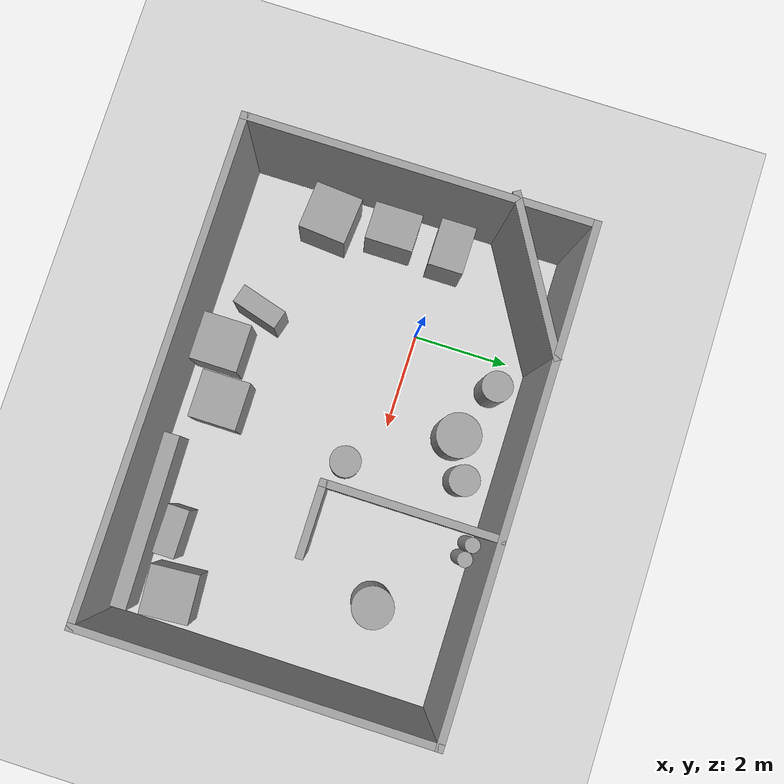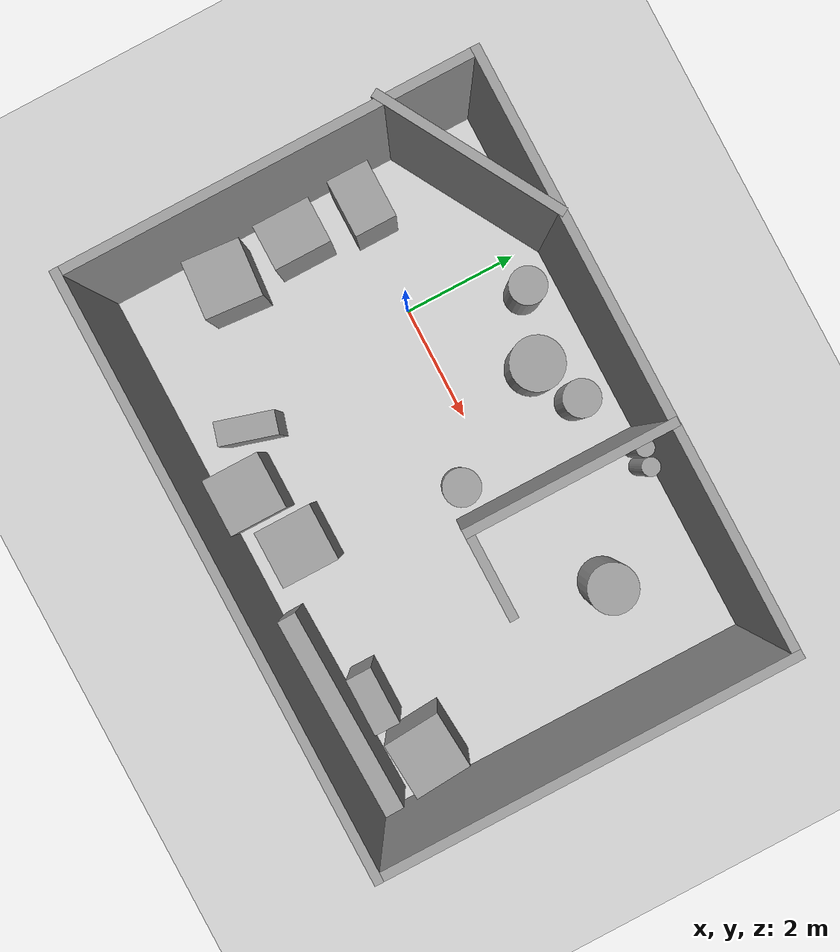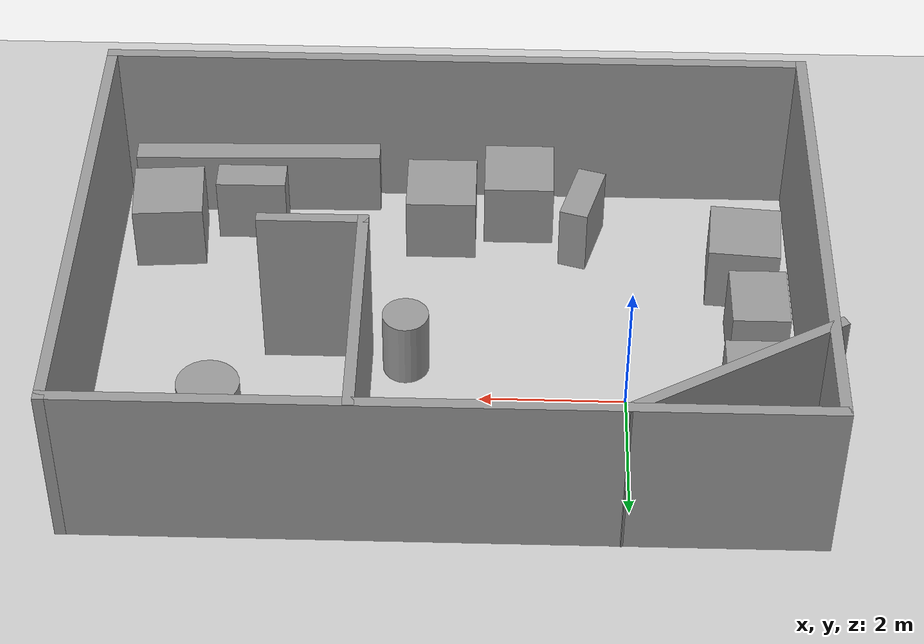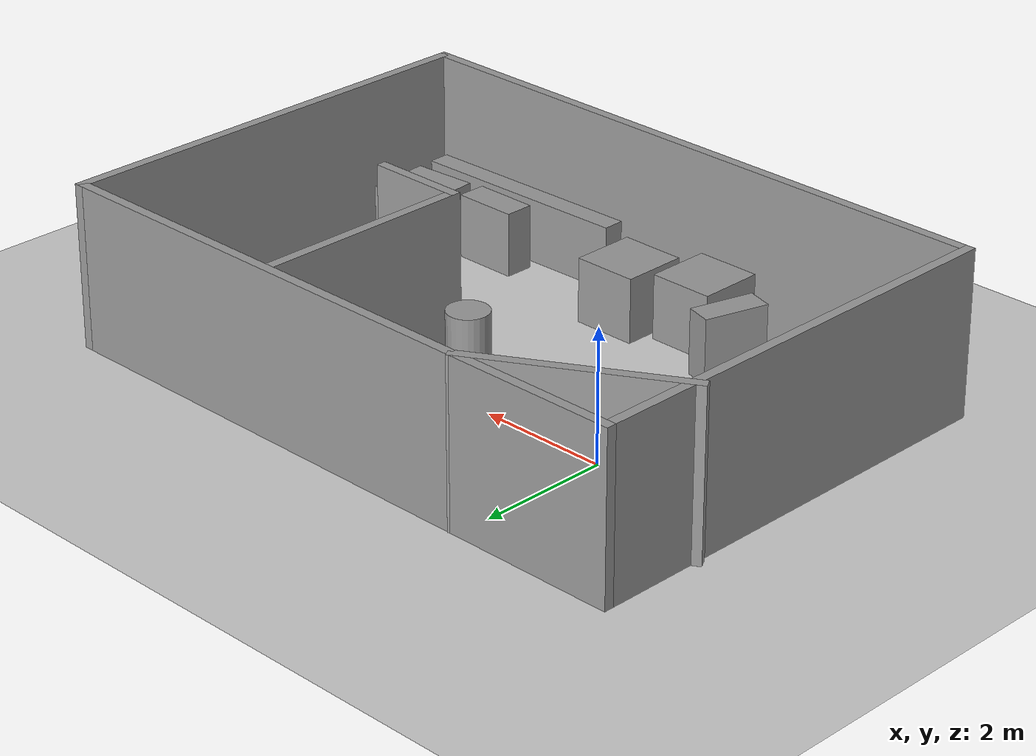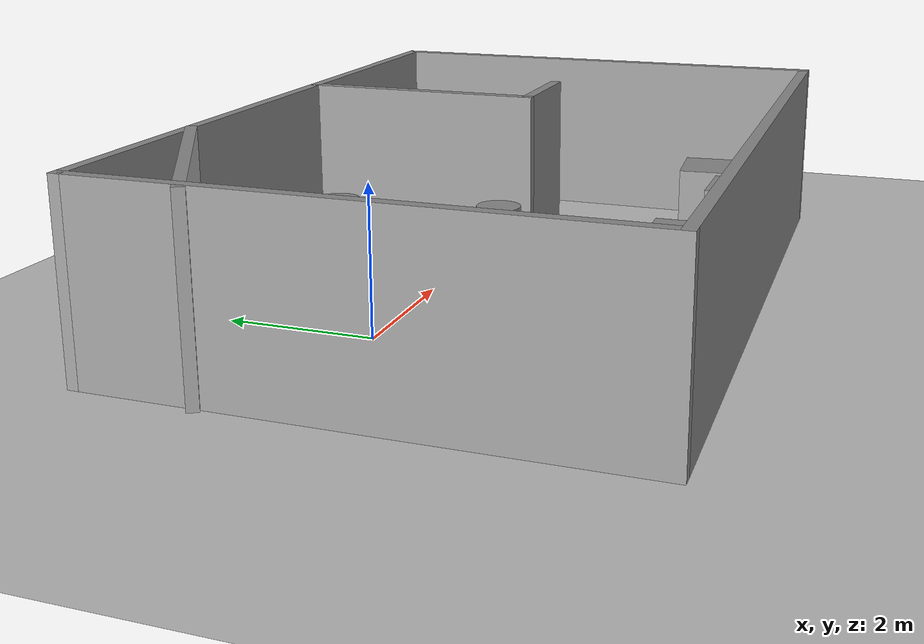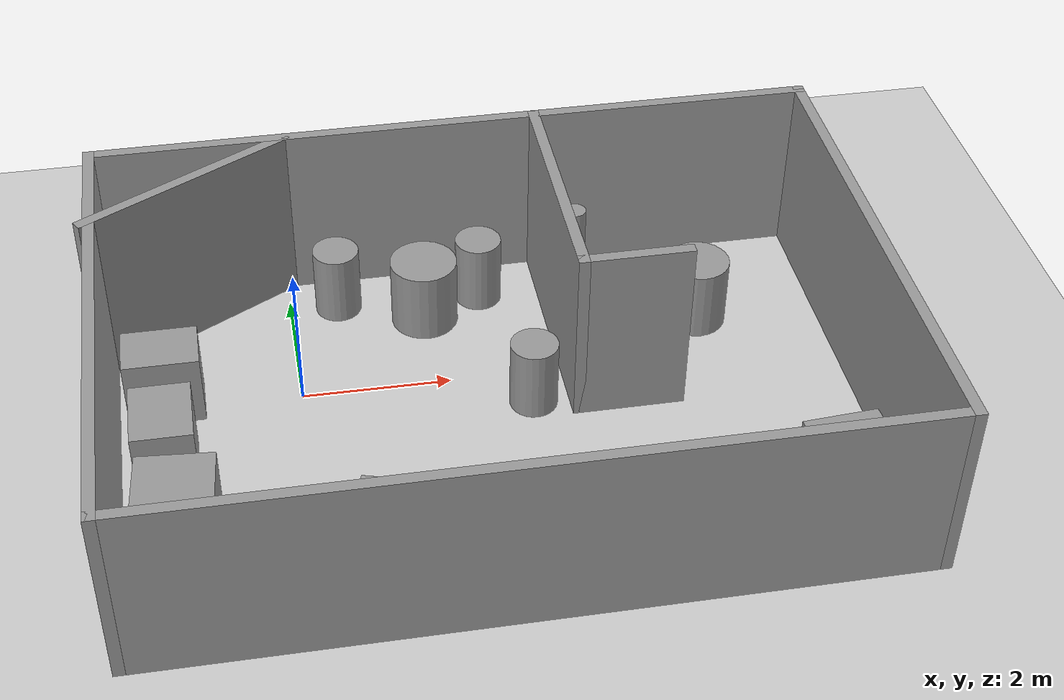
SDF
<sdf version="1.7">
 <world name="default">
  <light name="sun" type="directional">
   <pose>0 0 10 0 -0 0</pose>
   <diffuse>0.8 0.8 0.8 1</diffuse>
   <specular>0.2 0.2 0.2 1</specular>
   <attenuation>
    <range>1000</range>
    <constant>0.9</constant>
    <linear>0.01</linear>
    <quadratic>0.001</quadratic>
   </attenuation>
   <direction>-0.5 0.1 -0.9</direction>
   <spot><inner_angle>0</inner_angle><outer_angle>0</outer_angle><falloff>0</falloff></spot>
  </light>
  <model name="ground_plane">
   <static>1</static>
   <link name="link">
    <collision name="collision">
     <geometry><plane><normal>0 0 1</normal><size>100 100</size></plane></geometry>
     <surface>
      <contact><collide_bitmask>65535</collide_bitmask></contact>
      <friction><ode><mu>100</mu><mu2>50</mu2></ode></friction>
     </surface>
    </collision>
    <visual name="visual">
     <cast_shadows>0</cast_shadows>
     <geometry><plane><normal>0 0 1</normal><size>100 100</size></plane></geometry>
     <material>
      <script><uri>file://media/materials/scripts/gazebo.material</uri><name>Gazebo/Grey</name></script>
     </material>
    </visual>
   </link>
  </model>
  <gravity>0 0 -9.8</gravity>
  <magnetic_field>6e-06 2.3e-05 -4.2e-05</magnetic_field>
  <atmosphere type="adiabatic"/>
  <physics type="ode">
   <max_step_size>0.001</max_step_size>
   <real_time_factor>1</real_time_factor>
   <real_time_update_rate>1000</real_time_update_rate>
  </physics>
  <scene><ambient>0.4 0.4 0.4 1</ambient><background>0.7 0.7 0.7 1</background><shadows>1</shadows></scene>
  <spherical_coordinates>
   <surface_model>EARTH_WGS84</surface_model>
   <latitude_deg>0</latitude_deg>
   <longitude_deg>0</longitude_deg>
   <elevation>0</elevation>
   <heading_deg>0</heading_deg>
  </spherical_coordinates>
  <model name="Untitled">
   <pose>2.37536 -0.916647 0 0 -0 0</pose>
   <link name="Wall_0">
    <collision name="Wall_0_Collision">
     <geometry><box><size>10 0.15 2.5</size></box></geometry>
     <pose>0 0 1.25 0 -0 0</pose>
    </collision>
    <visual name="Wall_0_Visual">
     <pose>0 0 1.25 0 -0 0</pose>
     <geometry><box><size>10 0.15 2.5</size></box></geometry>
     <material>
      <script><uri>file://media/materials/scripts/gazebo.material</uri><name>Gazebo/Grey</name></script>
      <ambient>1 1 1 1</ambient>
     </material>
     <meta><layer>0</layer></meta>
    </visual>
    <pose>0.059639 -3.43335 0 0 -0 0</pose>
   </link>
   <link name="Wall_11">
    <collision name="Wall_11_Collision">
     <geometry><box><size>3.25 0.15 2.5</size></box></geometry>
     <pose>0 0 1.25 0 -0 0</pose>
    </collision>
    <visual name="Wall_11_Visual">
     <pose>0 0 1.25 0 -0 0</pose>
     <geometry><box><size>3.25 0.15 2.5</size></box></geometry>
     <material>
      <script><uri>file://media/materials/scripts/gazebo.material</uri><name>Gazebo/Grey</name></script>
      <ambient>1 1 1 1</ambient>
     </material>
     <meta><layer>0</layer></meta>
    </visual>
    <pose>-3.61485 2.6309 0 0 -0 -2.61799</pose>
   </link>
   <link name="Wall_13">
    <collision name="Wall_13_Collision">
     <geometry><box><size>3.5 0.15 2.5</size></box></geometry>
     <pose>0 0 1.25 0 -0 0</pose>
    </collision>
    <visual name="Wall_13_Visual">
     <pose>0 0 1.25 0 -0 0</pose>
     <geometry><box><size>3.5 0.15 2.5</size></box></geometry>
     <material>
      <script><uri>file://media/materials/scripts/gazebo.material</uri><name>Gazebo/Grey</name></script>
      <ambient>1 1 1 1</ambient>
     </material>
     <meta><layer>0</layer></meta>
    </visual>
    <pose>1.19509 1.7309 0 0 -0 -1.5708</pose>
   </link>
   <link name="Wall_14">
    <collision name="Wall_14_Collision">
     <geometry><box><size>1.5 0.15 2.5</size></box></geometry>
     <pose>0 0 1.25 0 -0 0</pose>
    </collision>
    <visual name="Wall_14_Visual">
     <pose>0 0 1.25 0 -0 0</pose>
     <geometry><box><size>1.5 0.15 2.5</size></box></geometry>
     <material>
      <script><uri>file://media/materials/scripts/gazebo.material</uri><name>Gazebo/Grey</name></script>
      <ambient>1 1 1 1</ambient>
     </material>
     <meta><layer>0</layer></meta>
    </visual>
    <pose>1.87009 0.055901 0 0 -0 0</pose>
   </link>
   <link name="Wall_4">
    <collision name="Wall_4_Collision">
     <geometry><box><size>7 0.15 2.5</size></box></geometry>
     <pose>0 0 1.25 0 -0 0</pose>
    </collision>
    <visual name="Wall_4_Visual">
     <pose>0 0 1.25 0 -0 0</pose>
     <geometry><box><size>7 0.15 2.5</size></box></geometry>
     <material>
      <script><uri>file://media/materials/scripts/gazebo.material</uri><name>Gazebo/Grey</name></script>
      <ambient>1 1 1 1</ambient>
     </material>
     <meta><layer>0</layer></meta>
    </visual>
    <pose>4.98464 -0.008353 0 0 -0 1.5708</pose>
   </link>
   <link name="Wall_8">
    <collision name="Wall_8_Collision">
     <geometry><box><size>10 0.15 2.5</size></box></geometry>
     <pose>0 0 1.25 0 -0 0</pose>
    </collision>
    <visual name="Wall_8_Visual">
     <pose>0 0 1.25 0 -0 0</pose>
     <geometry><box><size>10 0.15 2.5</size></box></geometry>
     <material>
      <script><uri>file://media/materials/scripts/gazebo.material</uri><name>Gazebo/Grey</name></script>
      <ambient>1 1 1 1</ambient>
     </material>
     <meta><layer>0</layer></meta>
    </visual>
    <pose>0.059639 3.41665 0 0 -0 3.14159</pose>
   </link>
   <link name="Wall_9">
    <collision name="Wall_9_Collision">
     <geometry><box><size>7 0.15 2.5</size></box></geometry>
     <pose>0 0 1.25 0 -0 0</pose>
    </collision>
    <visual name="Wall_9_Visual">
     <pose>0 0 1.25 0 -0 0</pose>
     <geometry><box><size>7 0.15 2.5</size></box></geometry>
     <material>
      <script><uri>file://media/materials/scripts/gazebo.material</uri><name>Gazebo/Grey</name></script>
      <ambient>1 1 1 1</ambient>
     </material>
     <meta><layer>0</layer></meta>
    </visual>
    <pose>-4.86536 -0.008353 0 0 -0 -1.5708</pose>
   </link>
   <static>1</static>
  </model>
  <model name="unit_cylinder">
   <pose>5.57565 0.767644 0.499997 2e-06 1e-06 0</pose>
   <link name="link">
    <inertial>
     <mass>1</mass>
     <inertia><ixx>0.145833</ixx><ixy>0</ixy><ixz>0</ixz><iyy>0.145833</iyy><iyz>0</iyz><izz>0.125</izz></inertia>
    </inertial>
    <collision name="collision">
     <geometry><cylinder><radius>0.426328</radius><length>1</length></cylinder></geometry>
    </collision>
    <visual name="visual">
     <geometry><cylinder><radius>0.426328</radius><length>1</length></cylinder></geometry>
     <material>
      <script><name>Gazebo/Grey</name><uri>file://media/materials/scripts/gazebo.material</uri></script>
     </material>
    </visual>
   </link>
  </model>
  <model name="unit_cylinder_0">
   <pose>0.673574 1.8296 0.499998 0 -0 0</pose>
   <link name="link">
    <inertial>
     <mass>1</mass>
     <inertia><ixx>0.145833</ixx><ixy>0</ixy><ixz>0</ixz><iyy>0.145833</iyy><iyz>0</iyz><izz>0.125</izz></inertia>
    </inertial>
    <collision name="collision">
     <geometry><cylinder><radius>0.319863</radius><length>1</length></cylinder></geometry>
    </collision>
    <visual name="visual">
     <geometry><cylinder><radius>0.319863</radius><length>1</length></cylinder></geometry>
     <material>
      <script><name>Gazebo/Grey</name><uri>file://media/materials/scripts/gazebo.material</uri></script>
     </material>
    </visual>
   </link>
  </model>
  <model name="unit_cylinder_0_clone">
   <pose>1.84074 1.38319 0.499993 0 -0 0</pose>
   <link name="link">
    <inertial>
     <mass>1</mass>
     <inertia><ixx>0.145833</ixx><ixy>0</ixy><ixz>0</ixz><iyy>0.145833</iyy><iyz>0</iyz><izz>0.125</izz></inertia>
    </inertial>
    <collision name="collision">
     <geometry><cylinder><radius>0.461617</radius><length>1</length></cylinder></geometry>
    </collision>
    <visual name="visual">
     <geometry><cylinder><radius>0.461617</radius><length>1</length></cylinder></geometry>
     <material>
      <script><name>Gazebo/Grey</name><uri>file://media/materials/scripts/gazebo.material</uri></script>
     </material>
    </visual>
   </link>
  </model>
  <model name="unit_cylinder_0_clone_0">
   <pose>2.6619 1.74895 0.499993 0 -0 0</pose>
   <link name="link">
    <inertial>
     <mass>1</mass>
     <inertia><ixx>0.145833</ixx><ixy>0</ixy><ixz>0</ixz><iyy>0.145833</iyy><iyz>0</iyz><izz>0.125</izz></inertia>
    </inertial>
    <collision name="collision">
     <geometry><cylinder><radius>0.319863</radius><length>1</length></cylinder></geometry>
    </collision>
    <visual name="visual">
     <geometry><cylinder><radius>0.319863</radius><length>1</length></cylinder></geometry>
     <material>
      <script><name>Gazebo/Grey</name><uri>file://media/materials/scripts/gazebo.material</uri></script>
     </material>
    </visual>
   </link>
  </model>
  <model name="unit_cylinder_0_clone_1">
   <pose>3.02041 -0.608378 0.499993 -1e-06 -0 -0</pose>
   <link name="link">
    <inertial>
     <mass>1</mass>
     <inertia><ixx>0.145833</ixx><ixy>0</ixy><ixz>0</ixz><iyy>0.145833</iyy><iyz>0</iyz><izz>0.125</izz></inertia>
    </inertial>
    <collision name="collision">
     <geometry><cylinder><radius>0.319863</radius><length>1</length></cylinder></geometry>
    </collision>
    <visual name="visual">
     <geometry><cylinder><radius>0.319863</radius><length>1</length></cylinder></geometry>
     <material>
      <script><name>Gazebo/Grey</name><uri>file://media/materials/scripts/gazebo.material</uri></script>
     </material>
    </visual>
   </link>
  </model>
  <model name="unit_box">
   <pose>-1.79405 0.133537 0.5 -0 -0 -0</pose>
   <link name="link">
    <inertial>
     <mass>1</mass>
     <inertia>
      <ixx>0.166667</ixx>
      <ixy>0</ixy>
      <ixz>0</ixz>
      <iyy>0.166667</iyy>
      <iyz>0</iyz>
      <izz>0.166667</izz>
     </inertia>
    </inertial>
    <collision name="collision"><geometry><box><size>1 0.729454 1</size></box></geometry></collision>
    <visual name="visual">
     <geometry><box><size>1 0.729454 1</size></box></geometry>
     <material>
      <script><name>Gazebo/Grey</name><uri>file://media/materials/scripts/gazebo.material</uri></script>
     </material>
    </visual>
   </link>
  </model>
  <model name="unit_box_0">
   <pose>-1.82063 -1.11111 0.499999 -1e-06 -4e-06 2e-06</pose>
   <link name="link">
    <inertial>
     <mass>1</mass>
     <inertia>
      <ixx>0.166667</ixx>
      <ixy>0</ixy>
      <ixz>0</ixz>
      <iyy>0.166667</iyy>
      <iyz>0</iyz>
      <izz>0.166667</izz>
     </inertia>
    </inertial>
    <collision name="collision"><geometry><box><size>0.792264 1 1</size></box></geometry></collision>
    <visual name="visual">
     <geometry><box><size>0.792264 1 1</size></box></geometry>
     <material>
      <script><name>Gazebo/Grey</name><uri>file://media/materials/scripts/gazebo.material</uri></script>
     </material>
    </visual>
   </link>
  </model>
  <model name="unit_box_1">
   <pose>-1.70626 -2.42684 0.499995 -1e-05 -0 -0.080917</pose>
   <link name="link">
    <inertial>
     <mass>1</mass>
     <inertia>
      <ixx>0.166667</ixx>
      <ixy>0</ixy>
      <ixz>0</ixz>
      <iyy>0.166667</iyy>
      <iyz>0</iyz>
      <izz>0.166667</izz>
     </inertia>
    </inertial>
    <collision name="collision"><geometry><box><size>1 1 1</size></box></geometry></collision>
    <visual name="visual">
     <geometry><box><size>1 1 1</size></box></geometry>
     <material>
      <script><name>Gazebo/Grey</name><uri>file://media/materials/scripts/gazebo.material</uri></script>
     </material>
    </visual>
   </link>
  </model>
  <model name="unit_box_2">
   <pose>1.49026 -3.7244 0.499995 -1e-05 0 0</pose>
   <link name="link">
    <inertial>
     <mass>1</mass>
     <inertia>
      <ixx>0.166667</ixx>
      <ixy>0</ixy>
      <ixz>0</ixz>
      <iyy>0.166667</iyy>
      <iyz>0</iyz>
      <izz>0.166667</izz>
     </inertia>
    </inertial>
    <collision name="collision"><geometry><box><size>1 1 1</size></box></geometry></collision>
    <visual name="visual">
     <geometry><box><size>1 1 1</size></box></geometry>
     <material>
      <script><name>Gazebo/Grey</name><uri>file://media/materials/scripts/gazebo.material</uri></script>
     </material>
    </visual>
   </link>
  </model>
  <model name="unit_box_3">
   <pose>2.61041 -3.3766 0.499995 0 -1e-05 0</pose>
   <link name="link">
    <inertial>
     <mass>1</mass>
     <inertia>
      <ixx>0.166667</ixx>
      <ixy>0</ixy>
      <ixz>0</ixz>
      <iyy>0.166667</iyy>
      <iyz>0</iyz>
      <izz>0.166667</izz>
     </inertia>
    </inertial>
    <collision name="collision"><geometry><box><size>1 1 1</size></box></geometry></collision>
    <visual name="visual">
     <geometry><box><size>1 1 1</size></box></geometry>
     <material>
      <script><name>Gazebo/Grey</name><uri>file://media/materials/scripts/gazebo.material</uri></script>
     </material>
    </visual>
   </link>
  </model>
  <model name="unit_box_4">
   <pose>5.31567 -4.01327 0.499582 6e-06 0.000236 0.022057</pose>
   <link name="link">
    <inertial>
     <mass>1</mass>
     <inertia>
      <ixx>0.166667</ixx>
      <ixy>0</ixy>
      <ixz>0</ixz>
      <iyy>0.166667</iyy>
      <iyz>0</iyz>
      <izz>0.166667</izz>
     </inertia>
    </inertial>
    <collision name="collision"><geometry><box><size>3.55832 0.328651 1</size></box></geometry></collision>
    <visual name="visual">
     <geometry><box><size>3.55832 0.328651 1</size></box></geometry>
     <material>
      <script><name>Gazebo/Grey</name><uri>file://media/materials/scripts/gazebo.material</uri></script>
     </material>
    </visual>
   </link>
  </model>
  <model name="unit_box_5">
   <pose>0.574984 -3.20275 0.499996 7e-06 -0 -0.28567</pose>
   <link name="link">
    <inertial>
     <mass>1</mass>
     <inertia>
      <ixx>0.166667</ixx>
      <ixy>0</ixy>
      <ixz>0</ixz>
      <iyy>0.166667</iyy>
      <iyz>0</iyz>
      <izz>0.166667</izz>
     </inertia>
    </inertial>
    <collision name="collision"><geometry><box><size>0.40754 1 1</size></box></geometry></collision>
    <visual name="visual">
     <geometry><box><size>0.40754 1 1</size></box></geometry>
     <material>
      <script><name>Gazebo/Grey</name><uri>file://media/materials/scripts/gazebo.material</uri></script>
     </material>
    </visual>
   </link>
  </model>
  <model name="unit_cylinder_0_clone_2">
   <pose>3.83021 2.2685 0.499998 0 0 -0.000199</pose>
   <link name="link">
    <inertial>
     <mass>1</mass>
     <inertia><ixx>0.145833</ixx><ixy>0</ixy><ixz>0</ixz><iyy>0.145833</iyy><iyz>0</iyz><izz>0.125</izz></inertia>
    </inertial>
    <collision name="collision">
     <geometry><cylinder><radius>0.156504</radius><length>1</length></cylinder></geometry>
    </collision>
    <visual name="visual">
     <geometry><cylinder><radius>0.156504</radius><length>1</length></cylinder></geometry>
     <material>
      <script><name>Gazebo/Grey</name><uri>file://media/materials/scripts/gazebo.material</uri></script>
     </material>
    </visual>
   </link>
  </model>
  <model name="unit_cylinder_0_clone_2_clone">
   <pose>4.14152 2.20771 0.499991 0 -0 -2e-06</pose>
   <link name="link">
    <inertial>
     <mass>1</mass>
     <inertia><ixx>0.145833</ixx><ixy>0</ixy><ixz>0</ixz><iyy>0.145833</iyy><iyz>0</iyz><izz>0.125</izz></inertia>
    </inertial>
    <collision name="collision">
     <geometry><cylinder><radius>0.156504</radius><length>1</length></cylinder></geometry>
    </collision>
    <visual name="visual">
     <geometry><cylinder><radius>0.156504</radius><length>1</length></cylinder></geometry>
     <material>
      <script><name>Gazebo/Grey</name><uri>file://media/materials/scripts/gazebo.material</uri></script>
     </material>
    </visual>
   </link>
  </model>
  <model name="unit_box_6">
   <pose>6.53878 -3.09903 0.499999 -3e-06 0 0.072038</pose>
   <link name="link">
    <inertial>
     <mass>1</mass>
     <inertia>
      <ixx>0.166667</ixx>
      <ixy>0</ixy>
      <ixz>0</ixz>
      <iyy>0.166667</iyy>
      <iyz>0</iyz>
      <izz>0.166667</izz>
     </inertia>
    </inertial>
    <collision name="collision"><geometry><box><size>1 1 1</size></box></geometry></collision>
    <visual name="visual">
     <geometry><box><size>1 1 1</size></box></geometry>
     <material>
      <script><name>Gazebo/Grey</name><uri>file://media/materials/scripts/gazebo.material</uri></script>
     </material>
    </visual>
   </link>
  </model>
  <model name="unit_box_7">
   <pose>5.36994 -3.45959 0.5 0 -0 0</pose>
   <link name="link">
    <inertial>
     <mass>1</mass>
     <inertia>
      <ixx>0.166667</ixx>
      <ixy>0</ixy>
      <ixz>0</ixz>
      <iyy>0.166667</iyy>
      <iyz>0</iyz>
      <izz>0.166667</izz>
     </inertia>
    </inertial>
    <collision name="collision"><geometry><box><size>1 0.449311 1</size></box></geometry></collision>
    <visual name="visual">
     <geometry><box><size>1 0.449311 1</size></box></geometry>
     <material>
      <script><name>Gazebo/Grey</name><uri>file://media/materials/scripts/gazebo.material</uri></script>
     </material>
    </visual>
   </link>
  </model>
 </world>
</sdf>
